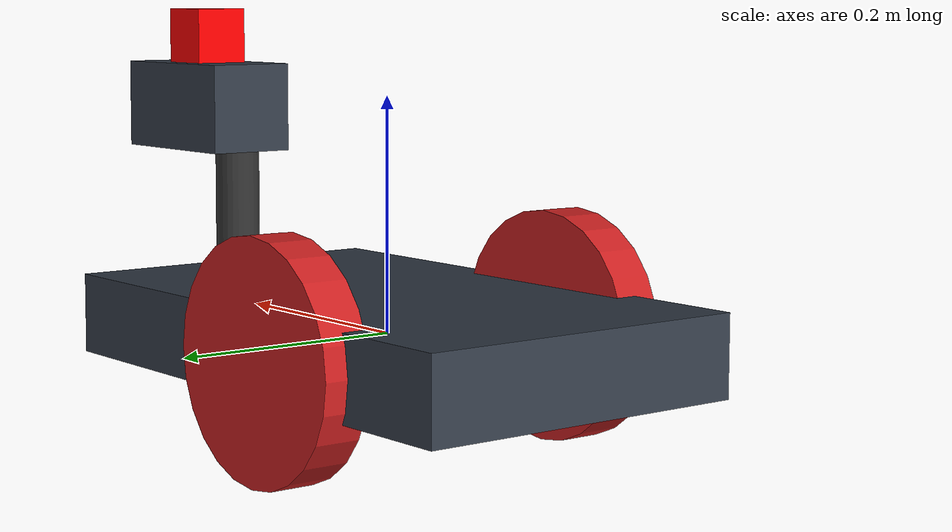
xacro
<?xml version="1.0"?>
<robot xmlns:xacro="http://www.ros.org/wiki/xacro" name="robot_xacro">
<xacro:include filename="$(find exp_assignment2)/urdf/robot.gazebo"/>

	<xacro:property name="length_wheel" value="0.04" />
	<xacro:property name="radius_wheel" value="0.1" />
  <xacro:property name="length_neck" value="0.1" />
	<xacro:property name="radius_neck" value="0.02" />

	<xacro:macro name="default_inertial" params="mass">
               <inertial>
                       <mass value="${mass}" />
                       <origin rpy="0 1.5707 1.5707" xyz="0 0 0"/>
                       <inertia ixx="0.000526666666667" ixy="0" ixz="0" iyy="0.000526666666667" iyz="0" izz="0.001"/>
               </inertial>
	</xacro:macro>

    <xacro:macro name="wheel_geometry">
		<geometry>
       			<cylinder length="${length_wheel}" radius="${radius_wheel}"/>
     	</geometry>
	</xacro:macro>

  <xacro:macro name="neck_geometry">
		<geometry>
       			<cylinder length="${length_neck}" radius="${radius_neck}"/>
     	</geometry>
	</xacro:macro>

  <material name="black">
    <color rgba="0.0 0.0 0.0 1.0"/>
  </material>
  <material name="blue">
    <color rgba="0.203125 0.23828125 0.28515625 1.0"/>
  </material>
  <material name="green">
    <color rgba="0.0 0.8 0.0 1.0"/>
  </material>
  <material name="grey">
    <color rgba="0.2 0.2 0.2 1.0"/>
  </material>
  <material name="orange">
    <color rgba="1.0 0.423529411765 0.0392156862745 1.0"/>
  </material>
  <material name="brown">
    <color rgba="0.870588235294 0.811764705882 0.764705882353 1.0"/>
  </material>
  <material name="red">
    <color rgba="0.80078125 0.12890625 0.1328125 1.0"/>
  </material>
  <material name="white">
    <color rgba="1.0 1.0 1.0 1.0"/>
  </material>

	  <link name="link_chassis">
    <!-- pose and inertial -->
    <pose>0 0 0.1 0 0 0</pose>
    <inertial>
      <mass value="5"/>
      <origin rpy="0 0 0" xyz="0 0 0.1"/>
      <inertia ixx="0.0395416666667" ixy="0" ixz="0" iyy="0.106208333333" iyz="0" izz="0.106208333333"/>
    </inertial>
    <!-- body -->
    <collision name="collision_chassis">
      <geometry>
        <box size="0.5 0.3 0.07"/>
      </geometry>
    </collision>
    <visual>
      <origin rpy="0 0 0" xyz="0 0 0"/>
      <geometry>
        <box size="0.5 0.3 0.07"/>
      </geometry>
      <material name="blue"/>
    </visual>
    <!-- caster front -->
    <collision name="caster_front_collision">
      <origin rpy=" 0 0 0" xyz="0.35 0 -0.05"/>
      <geometry>
        <sphere radius="0.05"/>
      </geometry>
    </collision>
    <visual name="caster_front_visual">
      <origin rpy=" 0 0 0" xyz="0.2 0 -0.05"/>
      <geometry>
        <sphere radius="0.05"/>
      </geometry>
    </visual>
  </link>

   <link name="link_right_wheel">
    <xacro:default_inertial mass="0.2"/>
    <collision name="link_right_wheel_collision">
      <origin rpy="0 1.5707 1.5707" xyz="0 0 0"/>
      <xacro:wheel_geometry />
    </collision>
    <visual name="link_right_wheel_visual">
      <origin rpy="0 1.5707 1.5707" xyz="0 0 0"/>
      <xacro:wheel_geometry />
      <material name="red"/>
    </visual>
  </link>

   <link name="link_left_wheel">
    <xacro:default_inertial mass="0.2"/>
    <collision name="link_left_wheel_collision">
      <origin rpy="0 1.5707 1.5707" xyz="0 0 0"/>
      <xacro:wheel_geometry />
    </collision>
    <visual name="link_left_wheel_visual">
      <origin rpy="0 1.5707 1.5707" xyz="0 0 0"/>
      <xacro:wheel_geometry />
      <material name="red"/>
    </visual>
  </link>

  	<link name="link_neck">
    <xacro:default_inertial mass="0.2"/>
    <collision name="neck_collision">
      <origin rpy="0 0 0" xyz="0 0 0.1"/>
      <xacro:neck_geometry />
    </collision>
    <visual name="neck_visual">
      <origin rpy="0 0 0" xyz="0 0 0.1"/>
      <xacro:neck_geometry />
      <material name="grey"/>
    </visual>
  </link>

<link name="link_head">
    <!-- pose and inertial -->
    <xacro:default_inertial mass="0.4"/>
    <!-- body -->
    <collision name="collision_head">
      <geometry>
        <box size="0.15 0.08 0.08"/>
      </geometry>
    </collision>
     <visual name="head_visual">
      <origin rpy="0 0 0" xyz="0 0 0.18"/>
      <geometry>
         <box size="0.15 0.08 0.08"/>
      </geometry>
      <material name="blue"/>
    </visual>

  </link>

  <joint name="joint_right_wheel" type="continuous">
    <origin rpy="0 0 0" xyz="-0.05 0.15 0"/>
    <child link="link_right_wheel"/>
    <parent link="link_chassis"/>
    <axis rpy="0 0 0" xyz="0 1 0"/>
    <limit effort="10000" velocity="1000"/>
    <joint_properties damping="1.0" friction="1.0"/>
  </joint>

  <joint name="joint_left_wheel" type="continuous">
    <origin rpy="0 0 0" xyz="-0.05 -0.15 0"/>
    <child link="link_left_wheel"/>
    <parent link="link_chassis"/>
    <axis rpy="0 0 0" xyz="0 1 0"/>
    <limit effort="10000" velocity="1000"/>
    <joint_properties damping="1.0" friction="1.0"/>
  </joint>

   <joint name="neck_joint" type="fixed">
	    <axis xyz="0 0 1" />
	    <origin xyz="0.23 0 0" rpy="0 0 0"/>
	    <parent link="link_chassis"/>
	    <child link="link_neck"/>
	 </joint>

   <joint name="head_joint" type="revolute">
	    <axis xyz="0 0 1" />
      <limit effort="1000.0" lower="-1.8" upper="1.8" velocity="0.2"/>
	    <origin xyz="0.05 0 0.0" rpy="0 0 0"/>
	    <parent link="link_neck"/>
	    <child link="link_head"/>
	 </joint>

  <link name="camera_link">
	    <collision>
	    <origin xyz="0 0 0.245" rpy="0 0 0"/>

	      <geometry>
		<box size="0.05 0.05 0.05"/>
	      </geometry>
	    </collision>
	    <visual>
	      <origin xyz="0 0 0.245" rpy="0 0 0"/>

	      <geometry>
		<box size="0.05 0.05 0.05"/>
	      </geometry>
	      <material name="red">
		<color rgba="1 0 0 1"/>
	      </material>
	    </visual>
	    <inertial>
	      <mass value="1e-5" />
	      <origin xyz="0 0 0" rpy="0 0 0"/>
	      <inertia ixx="1e-6" ixy="0" ixz="0" iyy="1e-6" iyz="0" izz="1e-6" />
	    </inertial>
  </link>

  <joint name="camera_joint" type="fixed">
	    <axis xyz="1 0 0" />
	    <origin xyz="0 0 0.0" rpy="0 0 0"/>
	    <parent link="link_head"/>
	    <child link="camera_link"/>
	 </joint>

<!-- transmission should be associated to each joint which I want to control-->
<transmission name="head_trans">
	<type>transmission_interface/SimpleTransmission</type> <!--kind of transmission-->
	<joint name="head_joint">
		<hardwareInterface>hardware_interface/EffortJointInterface</hardwareInterface> <!--type of controller that I am going to use-->
	</joint>
	<actuator name="motor1">
		<hardwareInterface>hardware_interface/EffortJointInterface</hardwareInterface>
		<mechanicalInterface>1</mechanicalInterface>
	</actuator>
</transmission>

</robot>
